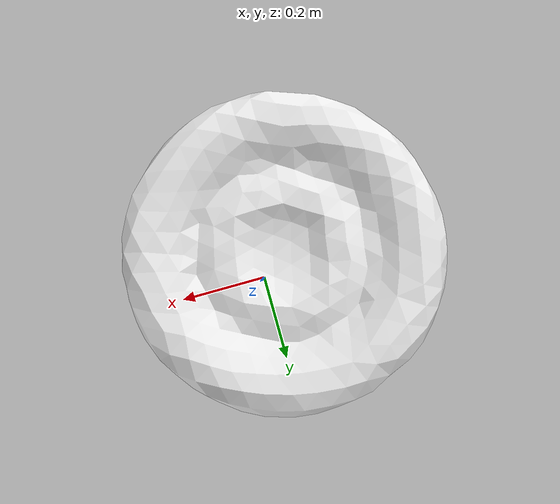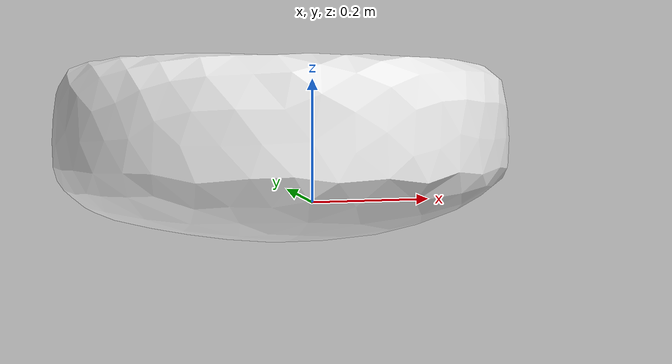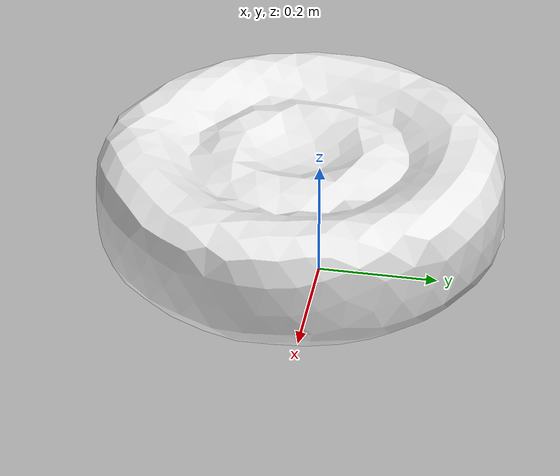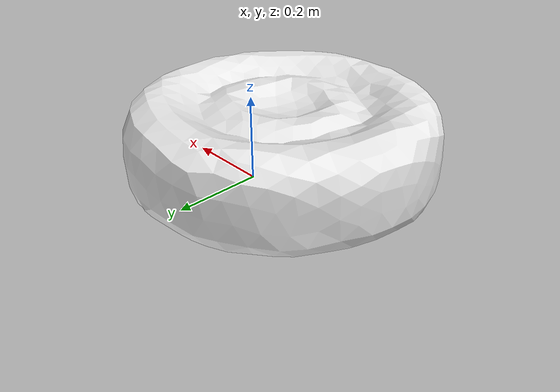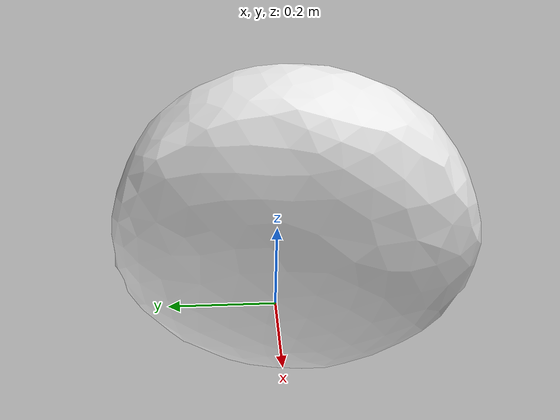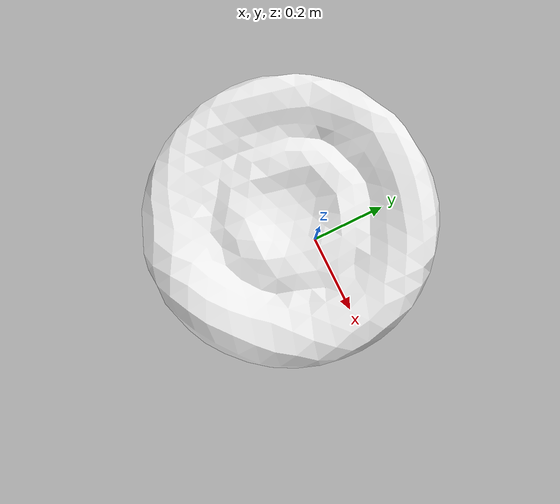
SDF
<?xml version="1.0" ?><sdf version="1.5"><model name="vw-tire">
<link name="link">
<pose>0 0 0 0 0 0</pose>
<inertial>
<pose>-0.0608915 -0.0403665 0.0930595 0 0 0</pose>
<mass>20</mass>
<inertia>
<ixx>0.894722</ixx>
<ixy>0</ixy><iyy>0.886291</iyy>
<ixz>0</ixz><iyz>0</iyz><izz>1.55599</izz>
</inertia>
</inertial>
<visual name="visual">
<pose>0 0 0 0 0 0</pose>
<geometry><mesh><uri>model://vw-tire/meshes/vw-tire.dae</uri></mesh></geometry>
<material><script><uri>file://media/materials/scripts/gazebo.material</uri><name>Gazebo/WhiteGlow</name></script></material></visual>
<collision name="collision"><pose>0 0 0 0 0 0</pose><geometry><mesh><uri>model://vw-tire/meshes/vw-tire.dae</uri></mesh></geometry>
<surface><friction><ode><mu>1.000000</mu><mu2>1.000000</mu2></ode></friction></surface>
</collision></link></model></sdf>
